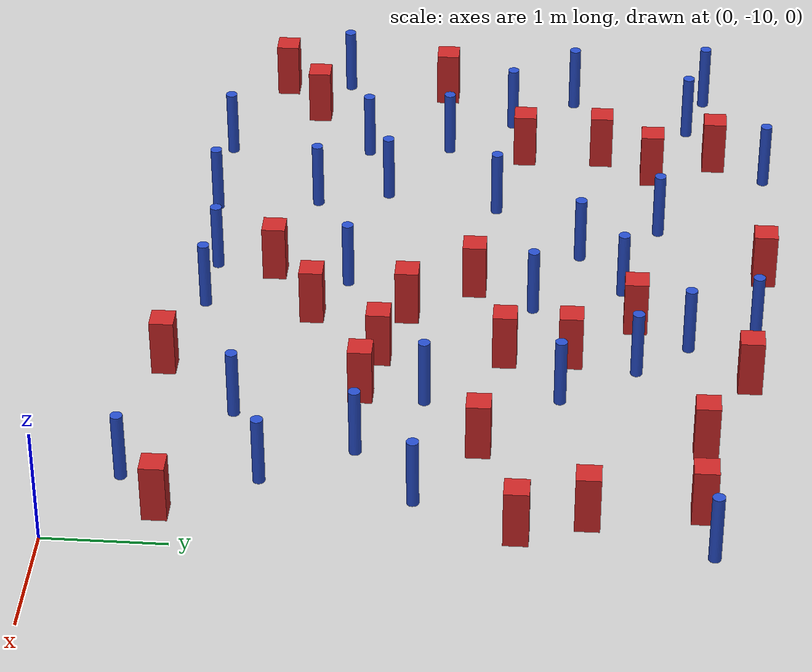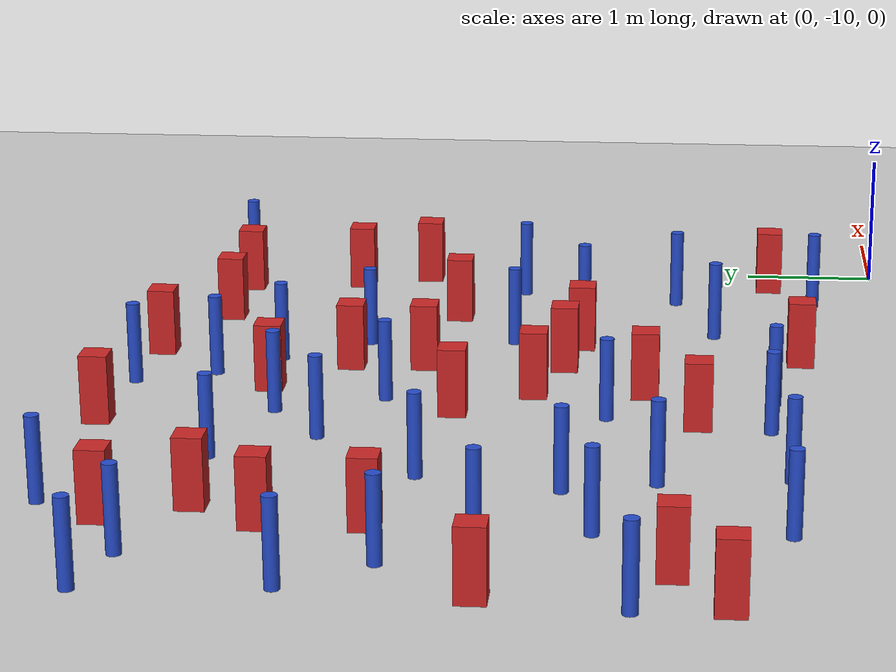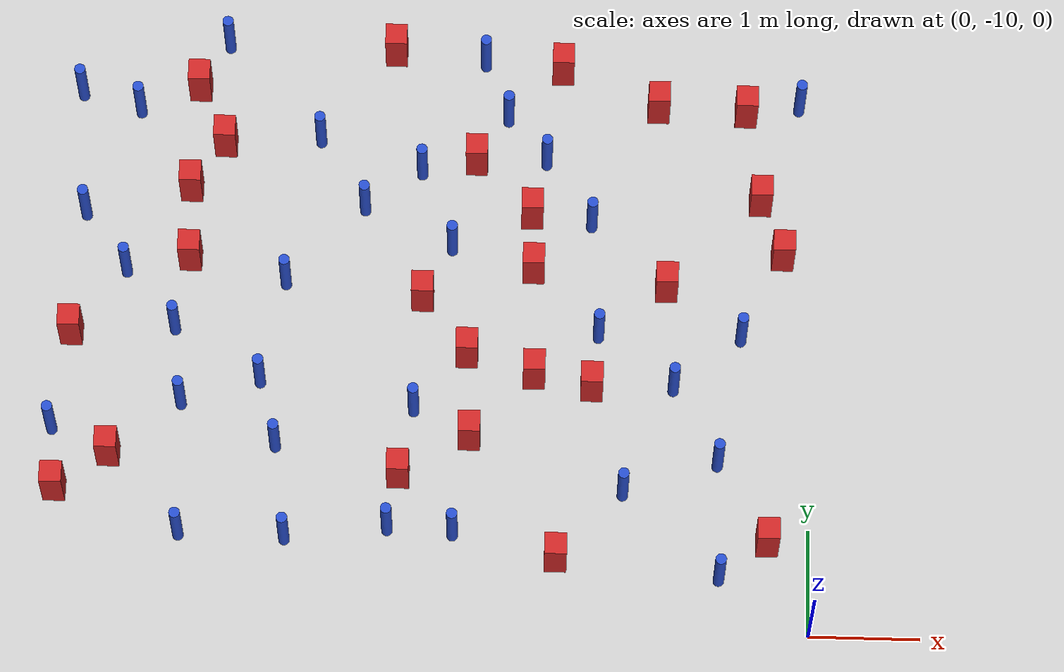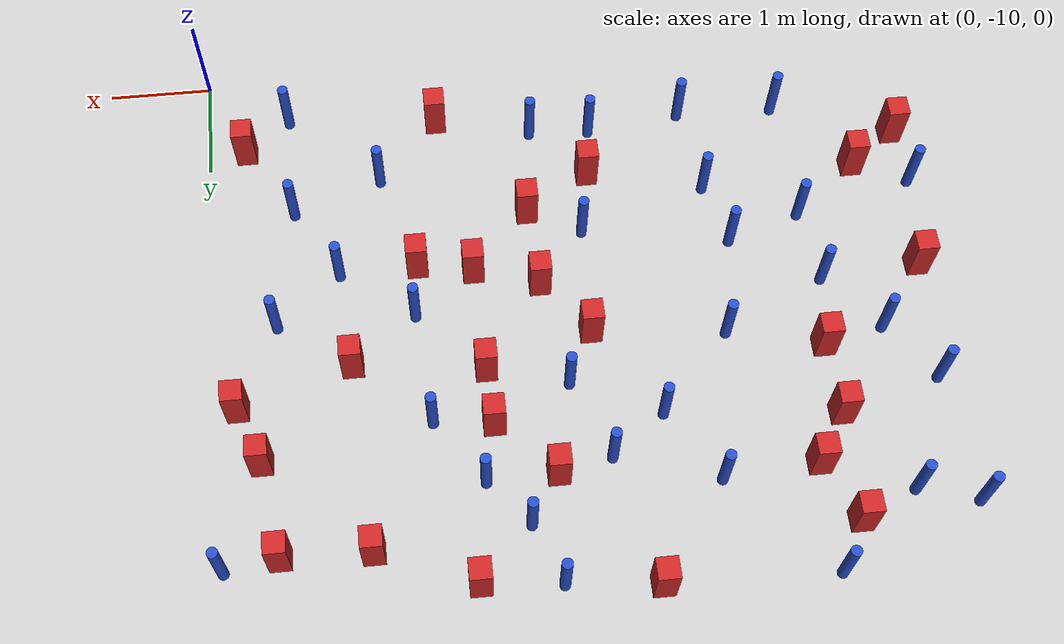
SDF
<sdf version="1.6">
 <world name="default">
  <model name="ground_plane">
   <static>1</static>
   <link name="link">
    <collision name="collision">
     <geometry><plane><normal>0 0 1</normal><size>100 100</size></plane></geometry>
     <surface><friction><ode><mu>100</mu><mu2>50</mu2></ode></friction></surface>
    </collision>
    <visual name="visual">
     <cast_shadows>0</cast_shadows>
     <geometry><plane><normal>0 0 1</normal><size>100 100</size></plane></geometry>
     <material>
      <ambient>1.0 1.0 1.0 1.0</ambient>
      <diffuse>0.8 0.8 0.8 1.0</diffuse>
      <specular>0.01 0.01 0.01 1.000000</specular>
     </material>
    </visual>
   </link>
  </model>
  <model name="square_post_obstacle6">
   <static>true</static>
   <pose>-1.40444385143 -4.89903000898 1.91545236811e-07 -7.35059704564e-06 1.12565212e-07 2.39332434364e-05</pose>
   <link name="link">
    <pose>0 0 0.25 0 -0 0</pose>
    <inertial>
     <mass>100</mass>
     <inertia>
      <ixx>0.166667</ixx>
      <ixy>0</ixy>
      <ixz>0</ixz>
      <iyy>0.166667</iyy>
      <iyz>0</iyz>
      <izz>0.166667</izz>
     </inertia>
    </inertial>
    <collision name="collision"><geometry><box><size>.2 .2 .5</size></box></geometry></collision>
    <visual name="visual">
     <geometry><box><size>.2 .2 .5</size></box></geometry>
     <material>
      <script><name>Gazebo/Red</name><uri>file://media/materials/scripts/gazebo.material</uri></script>
     </material>
    </visual>
   </link>
  </model>
  <model name="square_post_obstacle17">
   <static>true</static>
   <pose>-3.07128477709 -8.20239735445 1.91545236811e-07 -7.35059704564e-06 1.12565212e-07 2.39332434364e-05</pose>
   <link name="link">
    <pose>0 0 0.25 0 -0 0</pose>
    <inertial>
     <mass>100</mass>
     <inertia>
      <ixx>0.166667</ixx>
      <ixy>0</ixy>
      <ixz>0</ixz>
      <iyy>0.166667</iyy>
      <iyz>0</iyz>
      <izz>0.166667</izz>
     </inertia>
    </inertial>
    <collision name="collision"><geometry><box><size>.2 .2 .5</size></box></geometry></collision>
    <visual name="visual">
     <geometry><box><size>.2 .2 .5</size></box></geometry>
     <material>
      <script><name>Gazebo/Red</name><uri>file://media/materials/scripts/gazebo.material</uri></script>
     </material>
    </visual>
   </link>
  </model>
  <model name="pole_obstacle12">
   <static>true</static>
   <pose>-4.79339027958 -6.72328484426 7.38925637345e-09 -8.47170692796e-08 1.24976764786e-08 -1.74513093032e-07</pose>
   <link name="link">
    <pose>0 0 0.3 0 -0 0</pose>
    <inertial>
     <mass>1</mass>
     <inertia><ixx>0.145833</ixx><ixy>0</ixy><ixz>0</ixz><iyy>0.145833</iyy><iyz>0</iyz><izz>0.125</izz></inertia>
    </inertial>
    <collision name="collision">
     <geometry><cylinder><radius>0.05</radius><length>.6</length></cylinder></geometry>
    </collision>
    <visual name="visual">
     <geometry><cylinder><radius>0.05</radius><length>.6</length></cylinder></geometry>
     <material>
      <script><name>Gazebo/Blue</name><uri>file://media/materials/scripts/gazebo.material</uri></script>
     </material>
    </visual>
   </link>
  </model>
  <model name="pole_obstacle14">
   <static>true</static>
   <pose>-6.66168692127 -6.08012107927 7.38925637345e-09 -8.47170692796e-08 1.24976764786e-08 -1.74513093032e-07</pose>
   <link name="link">
    <pose>0 0 0.3 0 -0 0</pose>
    <inertial>
     <mass>1</mass>
     <inertia><ixx>0.145833</ixx><ixy>0</ixy><ixz>0</ixz><iyy>0.145833</iyy><iyz>0</iyz><izz>0.125</izz></inertia>
    </inertial>
    <collision name="collision">
     <geometry><cylinder><radius>0.05</radius><length>.6</length></cylinder></geometry>
    </collision>
    <visual name="visual">
     <geometry><cylinder><radius>0.05</radius><length>.6</length></cylinder></geometry>
     <material>
      <script><name>Gazebo/Blue</name><uri>file://media/materials/scripts/gazebo.material</uri></script>
     </material>
    </visual>
   </link>
  </model>
  <model name="pole_obstacle17">
   <static>true</static>
   <pose>-4.82409779071 -8.32265052835 7.38925637345e-09 -8.471706928e-08 1.24976765081e-08 -1.74513093015e-07</pose>
   <link name="link">
    <pose>0 0 0.3 0 -0 0</pose>
    <inertial>
     <mass>1</mass>
     <inertia><ixx>0.145833</ixx><ixy>0</ixy><ixz>0</ixz><iyy>0.145833</iyy><iyz>0</iyz><izz>0.125</izz></inertia>
    </inertial>
    <collision name="collision">
     <geometry><cylinder><radius>0.05</radius><length>.6</length></cylinder></geometry>
    </collision>
    <visual name="visual">
     <geometry><cylinder><radius>0.05</radius><length>.6</length></cylinder></geometry>
     <material>
      <script><name>Gazebo/Blue</name><uri>file://media/materials/scripts/gazebo.material</uri></script>
     </material>
    </visual>
   </link>
  </model>
  <model name="pole_obstacle18">
   <static>true</static>
   <pose>-6.25883870316 -6.64082050652 7.38925637345e-09 -8.47170692796e-08 1.24976764786e-08 -1.74513093032e-07</pose>
   <link name="link">
    <pose>0 0 0.3 0 -0 0</pose>
    <inertial>
     <mass>1</mass>
     <inertia><ixx>0.145833</ixx><ixy>0</ixy><ixz>0</ixz><iyy>0.145833</iyy><iyz>0</iyz><izz>0.125</izz></inertia>
    </inertial>
    <collision name="collision">
     <geometry><cylinder><radius>0.05</radius><length>.6</length></cylinder></geometry>
    </collision>
    <visual name="visual">
     <geometry><cylinder><radius>0.05</radius><length>.6</length></cylinder></geometry>
     <material>
      <script><name>Gazebo/Blue</name><uri>file://media/materials/scripts/gazebo.material</uri></script>
     </material>
    </visual>
   </link>
  </model>
  <model name="pole_obstacle27">
   <static>true</static>
   <pose>-5.78674635535 -7.20121944251 7.38925637345e-09 -8.47170692796e-08 1.24976764786e-08 -1.74513093032e-07</pose>
   <link name="link">
    <pose>0 0 0.3 0 -0 0</pose>
    <inertial>
     <mass>1</mass>
     <inertia><ixx>0.145833</ixx><ixy>0</ixy><ixz>0</ixz><iyy>0.145833</iyy><iyz>0</iyz><izz>0.125</izz></inertia>
    </inertial>
    <collision name="collision">
     <geometry><cylinder><radius>0.05</radius><length>.6</length></cylinder></geometry>
    </collision>
    <visual name="visual">
     <geometry><cylinder><radius>0.05</radius><length>.6</length></cylinder></geometry>
     <material>
      <script><name>Gazebo/Blue</name><uri>file://media/materials/scripts/gazebo.material</uri></script>
     </material>
    </visual>
   </link>
  </model>
  <model name="square_post_obstacle33">
   <static>true</static>
   <pose>-3.07728039993 -5.47345943943 1.91545236811e-07 -7.35059704564e-06 1.12565212e-07 2.39332434364e-05</pose>
   <link name="link">
    <pose>0 0 0.25 0 -0 0</pose>
    <inertial>
     <mass>100</mass>
     <inertia>
      <ixx>0.166667</ixx>
      <ixy>0</ixy>
      <ixz>0</ixz>
      <iyy>0.166667</iyy>
      <iyz>0</iyz>
      <izz>0.166667</izz>
     </inertia>
    </inertial>
    <collision name="collision"><geometry><box><size>.2 .2 .5</size></box></geometry></collision>
    <visual name="visual">
     <geometry><box><size>.2 .2 .5</size></box></geometry>
     <material>
      <script><name>Gazebo/Red</name><uri>file://media/materials/scripts/gazebo.material</uri></script>
     </material>
    </visual>
   </link>
  </model>
  <model name="pole_obstacle31">
   <static>true</static>
   <pose>-2.00265565012 -6.07647764942 7.38925637345e-09 -8.471706928e-08 1.24976765103e-08 -1.74513093015e-07</pose>
   <link name="link">
    <pose>0 0 0.3 0 -0 0</pose>
    <inertial>
     <mass>1</mass>
     <inertia><ixx>0.145833</ixx><ixy>0</ixy><ixz>0</ixz><iyy>0.145833</iyy><iyz>0</iyz><izz>0.125</izz></inertia>
    </inertial>
    <collision name="collision">
     <geometry><cylinder><radius>0.05</radius><length>.6</length></cylinder></geometry>
    </collision>
    <visual name="visual">
     <geometry><cylinder><radius>0.05</radius><length>.6</length></cylinder></geometry>
     <material>
      <script><name>Gazebo/Blue</name><uri>file://media/materials/scripts/gazebo.material</uri></script>
     </material>
    </visual>
   </link>
  </model>
  <model name="pole_obstacle41">
   <static>true</static>
   <pose>-3.01875447144 -4.46488249678 7.38925637345e-09 -8.47170692794e-08 1.24976764468e-08 -1.7451309304e-07</pose>
   <link name="link">
    <pose>0 0 0.3 0 -0 0</pose>
    <inertial>
     <mass>1</mass>
     <inertia><ixx>0.145833</ixx><ixy>0</ixy><ixz>0</ixz><iyy>0.145833</iyy><iyz>0</iyz><izz>0.125</izz></inertia>
    </inertial>
    <collision name="collision">
     <geometry><cylinder><radius>0.05</radius><length>.6</length></cylinder></geometry>
    </collision>
    <visual name="visual">
     <geometry><cylinder><radius>0.05</radius><length>.6</length></cylinder></geometry>
     <material>
      <script><name>Gazebo/Blue</name><uri>file://media/materials/scripts/gazebo.material</uri></script>
     </material>
    </visual>
   </link>
  </model>
  <model name="square_post_obstacle50">
   <static>true</static>
   <pose>-6.72833553622 -7.27044012686 1.91545236811e-07 -7.35059704564e-06 1.12565212e-07 2.39332434364e-05</pose>
   <link name="link">
    <pose>0 0 0.25 0 -0 0</pose>
    <inertial>
     <mass>100</mass>
     <inertia>
      <ixx>0.166667</ixx>
      <ixy>0</ixy>
      <ixz>0</ixz>
      <iyy>0.166667</iyy>
      <iyz>0</iyz>
      <izz>0.166667</izz>
     </inertia>
    </inertial>
    <collision name="collision"><geometry><box><size>.2 .2 .5</size></box></geometry></collision>
    <visual name="visual">
     <geometry><box><size>.2 .2 .5</size></box></geometry>
     <material>
      <script><name>Gazebo/Red</name><uri>file://media/materials/scripts/gazebo.material</uri></script>
     </material>
    </visual>
   </link>
  </model>
  <model name="square_post_obstacle51">
   <static>true</static>
   <pose>-3.85667295764 -4.37827110844 1.91545236811e-07 -7.35059704564e-06 1.12565212e-07 2.39332434364e-05</pose>
   <link name="link">
    <pose>0 0 0.25 0 -0 0</pose>
    <inertial>
     <mass>100</mass>
     <inertia>
      <ixx>0.166667</ixx>
      <ixy>0</ixy>
      <ixz>0</ixz>
      <iyy>0.166667</iyy>
      <iyz>0</iyz>
      <izz>0.166667</izz>
     </inertia>
    </inertial>
    <collision name="collision"><geometry><box><size>.2 .2 .5</size></box></geometry></collision>
    <visual name="visual">
     <geometry><box><size>.2 .2 .5</size></box></geometry>
     <material>
      <script><name>Gazebo/Red</name><uri>file://media/materials/scripts/gazebo.material</uri></script>
     </material>
    </visual>
   </link>
  </model>
  <model name="square_post_obstacle55">
   <static>true</static>
   <pose>-0.593554517572 -4.92219486548 1.91545236811e-07 -7.35059704564e-06 1.12565212e-07 2.39332434364e-05</pose>
   <link name="link">
    <pose>0 0 0.25 0 -0 0</pose>
    <inertial>
     <mass>100</mass>
     <inertia>
      <ixx>0.166667</ixx>
      <ixy>0</ixy>
      <ixz>0</ixz>
      <iyy>0.166667</iyy>
      <iyz>0</iyz>
      <izz>0.166667</izz>
     </inertia>
    </inertial>
    <collision name="collision"><geometry><box><size>.2 .2 .5</size></box></geometry></collision>
    <visual name="visual">
     <geometry><box><size>.2 .2 .5</size></box></geometry>
     <material>
      <script><name>Gazebo/Red</name><uri>file://media/materials/scripts/gazebo.material</uri></script>
     </material>
    </visual>
   </link>
  </model>
  <model name="square_post_obstacle70">
   <static>true</static>
   <pose>-1.97402746543 -7.69793560643 1.91545236811e-07 -7.35059704564e-06 1.12565212e-07 2.39332434364e-05</pose>
   <link name="link">
    <pose>0 0 0.25 0 -0 0</pose>
    <inertial>
     <mass>100</mass>
     <inertia>
      <ixx>0.166667</ixx>
      <ixy>0</ixy>
      <ixz>0</ixz>
      <iyy>0.166667</iyy>
      <iyz>0</iyz>
      <izz>0.166667</izz>
     </inertia>
    </inertial>
    <collision name="collision"><geometry><box><size>.2 .2 .5</size></box></geometry></collision>
    <visual name="visual">
     <geometry><box><size>.2 .2 .5</size></box></geometry>
     <material>
      <script><name>Gazebo/Red</name><uri>file://media/materials/scripts/gazebo.material</uri></script>
     </material>
    </visual>
   </link>
  </model>
  <model name="pole_obstacle68">
   <static>true</static>
   <pose>-3.27811197953 -6.34348157316 7.38925637345e-09 -8.47170692794e-08 1.24976764468e-08 -1.7451309304e-07</pose>
   <link name="link">
    <pose>0 0 0.3 0 -0 0</pose>
    <inertial>
     <mass>1</mass>
     <inertia><ixx>0.145833</ixx><ixy>0</ixy><ixz>0</ixz><iyy>0.145833</iyy><iyz>0</iyz><izz>0.125</izz></inertia>
    </inertial>
    <collision name="collision">
     <geometry><cylinder><radius>0.05</radius><length>.6</length></cylinder></geometry>
    </collision>
    <visual name="visual">
     <geometry><cylinder><radius>0.05</radius><length>.6</length></cylinder></geometry>
     <material>
      <script><name>Gazebo/Blue</name><uri>file://media/materials/scripts/gazebo.material</uri></script>
     </material>
    </visual>
   </link>
  </model>
  <model name="pole_obstacle82">
   <static>true</static>
   <pose>-5.41580588375 -4.33905068635 7.38925637345e-09 -8.47170692796e-08 1.24976764786e-08 -1.74513093032e-07</pose>
   <link name="link">
    <pose>0 0 0.3 0 -0 0</pose>
    <inertial>
     <mass>1</mass>
     <inertia><ixx>0.145833</ixx><ixy>0</ixy><ixz>0</ixz><iyy>0.145833</iyy><iyz>0</iyz><izz>0.125</izz></inertia>
    </inertial>
    <collision name="collision">
     <geometry><cylinder><radius>0.05</radius><length>.6</length></cylinder></geometry>
    </collision>
    <visual name="visual">
     <geometry><cylinder><radius>0.05</radius><length>.6</length></cylinder></geometry>
     <material>
      <script><name>Gazebo/Blue</name><uri>file://media/materials/scripts/gazebo.material</uri></script>
     </material>
    </visual>
   </link>
  </model>
  <model name="pole_obstacle89">
   <static>true</static>
   <pose>-3.19739316723 -9.12902795003 7.38925637345e-09 -8.47170692793e-08 1.24976764408e-08 -1.74513093041e-07</pose>
   <link name="link">
    <pose>0 0 0.3 0 -0 0</pose>
    <inertial>
     <mass>1</mass>
     <inertia><ixx>0.145833</ixx><ixy>0</ixy><ixz>0</ixz><iyy>0.145833</iyy><iyz>0</iyz><izz>0.125</izz></inertia>
    </inertial>
    <collision name="collision">
     <geometry><cylinder><radius>0.05</radius><length>.6</length></cylinder></geometry>
    </collision>
    <visual name="visual">
     <geometry><cylinder><radius>0.05</radius><length>.6</length></cylinder></geometry>
     <material>
      <script><name>Gazebo/Blue</name><uri>file://media/materials/scripts/gazebo.material</uri></script>
     </material>
    </visual>
   </link>
  </model>
  <model name="square_post_obstacle82">
   <static>true</static>
   <pose>-3.70194847 -8.58561137741 1.91545236811e-07 -7.35059704564e-06 1.12565212e-07 2.39332434364e-05</pose>
   <link name="link">
    <pose>0 0 0.25 0 -0 0</pose>
    <inertial>
     <mass>100</mass>
     <inertia>
      <ixx>0.166667</ixx>
      <ixy>0</ixy>
      <ixz>0</ixz>
      <iyy>0.166667</iyy>
      <iyz>0</iyz>
      <izz>0.166667</izz>
     </inertia>
    </inertial>
    <collision name="collision"><geometry><box><size>.2 .2 .5</size></box></geometry></collision>
    <visual name="visual">
     <geometry><box><size>.2 .2 .5</size></box></geometry>
     <material>
      <script><name>Gazebo/Red</name><uri>file://media/materials/scripts/gazebo.material</uri></script>
     </material>
    </visual>
   </link>
  </model>
  <model name="square_post_obstacle85">
   <static>true</static>
   <pose>-0.453224384504 -5.81950154449 1.91545236811e-07 -7.35059704564e-06 1.12565212e-07 2.39332434364e-05</pose>
   <link name="link">
    <pose>0 0 0.25 0 -0 0</pose>
    <inertial>
     <mass>100</mass>
     <inertia>
      <ixx>0.166667</ixx>
      <ixy>0</ixy>
      <ixz>0</ixz>
      <iyy>0.166667</iyy>
      <iyz>0</iyz>
      <izz>0.166667</izz>
     </inertia>
    </inertial>
    <collision name="collision"><geometry><box><size>.2 .2 .5</size></box></geometry></collision>
    <visual name="visual">
     <geometry><box><size>.2 .2 .5</size></box></geometry>
     <material>
      <script><name>Gazebo/Red</name><uri>file://media/materials/scripts/gazebo.material</uri></script>
     </material>
    </visual>
   </link>
  </model>
  <model name="square_post_obstacle88">
   <static>true</static>
   <pose>-3.53510634495 -6.85322954454 1.91545236811e-07 -7.35059704564e-06 1.12565212e-07 2.39332434364e-05</pose>
   <link name="link">
    <pose>0 0 0.25 0 -0 0</pose>
    <inertial>
     <mass>100</mass>
     <inertia>
      <ixx>0.166667</ixx>
      <ixy>0</ixy>
      <ixz>0</ixz>
      <iyy>0.166667</iyy>
      <iyz>0</iyz>
      <izz>0.166667</izz>
     </inertia>
    </inertial>
    <collision name="collision"><geometry><box><size>.2 .2 .5</size></box></geometry></collision>
    <visual name="visual">
     <geometry><box><size>.2 .2 .5</size></box></geometry>
     <material>
      <script><name>Gazebo/Red</name><uri>file://media/materials/scripts/gazebo.material</uri></script>
     </material>
    </visual>
   </link>
  </model>
  <model name="pole_obstacle102">
   <static>true</static>
   <pose>-1.23158757573 -7.68034353338 7.38925637345e-09 -8.47170692799e-08 1.24976765033e-08 -1.74513093018e-07</pose>
   <link name="link">
    <pose>0 0 0.3 0 -0 0</pose>
    <inertial>
     <mass>1</mass>
     <inertia><ixx>0.145833</ixx><ixy>0</ixy><ixz>0</ixz><iyy>0.145833</iyy><iyz>0</iyz><izz>0.125</izz></inertia>
    </inertial>
    <collision name="collision">
     <geometry><cylinder><radius>0.05</radius><length>.6</length></cylinder></geometry>
    </collision>
    <visual name="visual">
     <geometry><cylinder><radius>0.05</radius><length>.6</length></cylinder></geometry>
     <material>
      <script><name>Gazebo/Blue</name><uri>file://media/materials/scripts/gazebo.material</uri></script>
     </material>
    </visual>
   </link>
  </model>
  <model name="square_post_obstacle96">
   <static>true</static>
   <pose>-2.55124273066 -6.00426062025 1.91545236811e-07 -7.35059704564e-06 1.12565212e-07 2.39332434364e-05</pose>
   <link name="link">
    <pose>0 0 0.25 0 -0 0</pose>
    <inertial>
     <mass>100</mass>
     <inertia>
      <ixx>0.166667</ixx>
      <ixy>0</ixy>
      <ixz>0</ixz>
      <iyy>0.166667</iyy>
      <iyz>0</iyz>
      <izz>0.166667</izz>
     </inertia>
    </inertial>
    <collision name="collision"><geometry><box><size>.2 .2 .5</size></box></geometry></collision>
    <visual name="visual">
     <geometry><box><size>.2 .2 .5</size></box></geometry>
     <material>
      <script><name>Gazebo/Red</name><uri>file://media/materials/scripts/gazebo.material</uri></script>
     </material>
    </visual>
   </link>
  </model>
  <model name="square_post_obstacle97">
   <static>true</static>
   <pose>-1.30881797651 -6.70363157481 1.91545236811e-07 -7.35059704564e-06 1.12565212e-07 2.39332434364e-05</pose>
   <link name="link">
    <pose>0 0 0.25 0 -0 0</pose>
    <inertial>
     <mass>100</mass>
     <inertia>
      <ixx>0.166667</ixx>
      <ixy>0</ixy>
      <ixz>0</ixz>
      <iyy>0.166667</iyy>
      <iyz>0</iyz>
      <izz>0.166667</izz>
     </inertia>
    </inertial>
    <collision name="collision"><geometry><box><size>.2 .2 .5</size></box></geometry></collision>
    <visual name="visual">
     <geometry><box><size>.2 .2 .5</size></box></geometry>
     <material>
      <script><name>Gazebo/Red</name><uri>file://media/materials/scripts/gazebo.material</uri></script>
     </material>
    </visual>
   </link>
  </model>
  <model name="pole_obstacle114">
   <static>true</static>
   <pose>-3.58279023233 -7.94264724809 7.38925637345e-09 -8.47170692798e-08 1.24976765033e-08 -1.74513093019e-07</pose>
   <link name="link">
    <pose>0 0 0.3 0 -0 0</pose>
    <inertial>
     <mass>1</mass>
     <inertia><ixx>0.145833</ixx><ixy>0</ixy><ixz>0</ixz><iyy>0.145833</iyy><iyz>0</iyz><izz>0.125</izz></inertia>
    </inertial>
    <collision name="collision">
     <geometry><cylinder><radius>0.05</radius><length>.6</length></cylinder></geometry>
    </collision>
    <visual name="visual">
     <geometry><cylinder><radius>0.05</radius><length>.6</length></cylinder></geometry>
     <material>
      <script><name>Gazebo/Blue</name><uri>file://media/materials/scripts/gazebo.material</uri></script>
     </material>
    </visual>
   </link>
  </model>
  <model name="pole_obstacle117">
   <static>true</static>
   <pose>-5.69742422665 -7.93117311807 7.38925637345e-09 -8.47170692796e-08 1.24976764786e-08 -1.74513093032e-07</pose>
   <link name="link">
    <pose>0 0 0.3 0 -0 0</pose>
    <inertial>
     <mass>1</mass>
     <inertia><ixx>0.145833</ixx><ixy>0</ixy><ixz>0</ixz><iyy>0.145833</iyy><iyz>0</iyz><izz>0.125</izz></inertia>
    </inertial>
    <collision name="collision">
     <geometry><cylinder><radius>0.05</radius><length>.6</length></cylinder></geometry>
    </collision>
    <visual name="visual">
     <geometry><cylinder><radius>0.05</radius><length>.6</length></cylinder></geometry>
     <material>
      <script><name>Gazebo/Blue</name><uri>file://media/materials/scripts/gazebo.material</uri></script>
     </material>
    </visual>
   </link>
  </model>
  <model name="pole_obstacle129">
   <static>true</static>
   <pose>-4.98765309089 -7.70136281692 7.38925637345e-09 -8.47170692796e-08 1.24976764786e-08 -1.74513093032e-07</pose>
   <link name="link">
    <pose>0 0 0.3 0 -0 0</pose>
    <inertial>
     <mass>1</mass>
     <inertia><ixx>0.145833</ixx><ixy>0</ixy><ixz>0</ixz><iyy>0.145833</iyy><iyz>0</iyz><izz>0.125</izz></inertia>
    </inertial>
    <collision name="collision">
     <geometry><cylinder><radius>0.05</radius><length>.6</length></cylinder></geometry>
    </collision>
    <visual name="visual">
     <geometry><cylinder><radius>0.05</radius><length>.6</length></cylinder></geometry>
     <material>
      <script><name>Gazebo/Blue</name><uri>file://media/materials/scripts/gazebo.material</uri></script>
     </material>
    </visual>
   </link>
  </model>
  <model name="square_post_obstacle114">
   <static>true</static>
   <pose>-0.246106954346 -6.36054094245 1.91545236811e-07 -7.35059704564e-06 1.12565212e-07 2.39332434364e-05</pose>
   <link name="link">
    <pose>0 0 0.25 0 -0 0</pose>
    <inertial>
     <mass>100</mass>
     <inertia>
      <ixx>0.166667</ixx>
      <ixy>0</ixy>
      <ixz>0</ixz>
      <iyy>0.166667</iyy>
      <iyz>0</iyz>
      <izz>0.166667</izz>
     </inertia>
    </inertial>
    <collision name="collision"><geometry><box><size>.2 .2 .5</size></box></geometry></collision>
    <visual name="visual">
     <geometry><box><size>.2 .2 .5</size></box></geometry>
     <material>
      <script><name>Gazebo/Red</name><uri>file://media/materials/scripts/gazebo.material</uri></script>
     </material>
    </visual>
   </link>
  </model>
  <model name="pole_obstacle135">
   <static>true</static>
   <pose>-4.0937844254 -5.96496953587 7.38925637345e-09 -8.47170692796e-08 1.24976764786e-08 -1.74513093032e-07</pose>
   <link name="link">
    <pose>0 0 0.3 0 -0 0</pose>
    <inertial>
     <mass>1</mass>
     <inertia><ixx>0.145833</ixx><ixy>0</ixy><ixz>0</ixz><iyy>0.145833</iyy><iyz>0</iyz><izz>0.125</izz></inertia>
    </inertial>
    <collision name="collision">
     <geometry><cylinder><radius>0.05</radius><length>.6</length></cylinder></geometry>
    </collision>
    <visual name="visual">
     <geometry><cylinder><radius>0.05</radius><length>.6</length></cylinder></geometry>
     <material>
      <script><name>Gazebo/Blue</name><uri>file://media/materials/scripts/gazebo.material</uri></script>
     </material>
    </visual>
   </link>
  </model>
  <model name="square_post_obstacle121">
   <static>true</static>
   <pose>-2.52819036793 -6.54994607869 1.91545236811e-07 -7.35059704564e-06 1.12565212e-07 2.39332434364e-05</pose>
   <link name="link">
    <pose>0 0 0.25 0 -0 0</pose>
    <inertial>
     <mass>100</mass>
     <inertia>
      <ixx>0.166667</ixx>
      <ixy>0</ixy>
      <ixz>0</ixz>
      <iyy>0.166667</iyy>
      <iyz>0</iyz>
      <izz>0.166667</izz>
     </inertia>
    </inertial>
    <collision name="collision"><geometry><box><size>.2 .2 .5</size></box></geometry></collision>
    <visual name="visual">
     <geometry><box><size>.2 .2 .5</size></box></geometry>
     <material>
      <script><name>Gazebo/Red</name><uri>file://media/materials/scripts/gazebo.material</uri></script>
     </material>
    </visual>
   </link>
  </model>
  <model name="square_post_obstacle123">
   <static>true</static>
   <pose>-2.29869856042 -4.53099055926 1.91545236811e-07 -7.35059704564e-06 1.12565212e-07 2.39332434364e-05</pose>
   <link name="link">
    <pose>0 0 0.25 0 -0 0</pose>
    <inertial>
     <mass>100</mass>
     <inertia>
      <ixx>0.166667</ixx>
      <ixy>0</ixy>
      <ixz>0</ixz>
      <iyy>0.166667</iyy>
      <iyz>0</iyz>
      <izz>0.166667</izz>
     </inertia>
    </inertial>
    <collision name="collision"><geometry><box><size>.2 .2 .5</size></box></geometry></collision>
    <visual name="visual">
     <geometry><box><size>.2 .2 .5</size></box></geometry>
     <material>
      <script><name>Gazebo/Red</name><uri>file://media/materials/scripts/gazebo.material</uri></script>
     </material>
    </visual>
   </link>
  </model>
  <model name="square_post_obstacle135">
   <static>true</static>
   <pose>-5.667500204 -4.78831926004 1.91545236811e-07 -7.35059704564e-06 1.12565212e-07 2.39332434364e-05</pose>
   <link name="link">
    <pose>0 0 0.25 0 -0 0</pose>
    <inertial>
     <mass>100</mass>
     <inertia>
      <ixx>0.166667</ixx>
      <ixy>0</ixy>
      <ixz>0</ixz>
      <iyy>0.166667</iyy>
      <iyz>0</iyz>
      <izz>0.166667</izz>
     </inertia>
    </inertial>
    <collision name="collision"><geometry><box><size>.2 .2 .5</size></box></geometry></collision>
    <visual name="visual">
     <geometry><box><size>.2 .2 .5</size></box></geometry>
     <material>
      <script><name>Gazebo/Red</name><uri>file://media/materials/scripts/gazebo.material</uri></script>
     </material>
    </visual>
   </link>
  </model>
  <model name="pole_obstacle145">
   <static>true</static>
   <pose>-3.78516833423 -9.09547938027 7.38925637345e-09 -8.47170692793e-08 1.24976764408e-08 -1.74513093041e-07</pose>
   <link name="link">
    <pose>0 0 0.3 0 -0 0</pose>
    <inertial>
     <mass>1</mass>
     <inertia><ixx>0.145833</ixx><ixy>0</ixy><ixz>0</ixz><iyy>0.145833</iyy><iyz>0</iyz><izz>0.125</izz></inertia>
    </inertial>
    <collision name="collision">
     <geometry><cylinder><radius>0.05</radius><length>.6</length></cylinder></geometry>
    </collision>
    <visual name="visual">
     <geometry><cylinder><radius>0.05</radius><length>.6</length></cylinder></geometry>
     <material>
      <script><name>Gazebo/Blue</name><uri>file://media/materials/scripts/gazebo.material</uri></script>
     </material>
    </visual>
   </link>
  </model>
  <model name="pole_obstacle146">
   <static>true</static>
   <pose>-0.822686962245 -8.40250767151 7.38925637345e-09 -8.47170692797e-08 1.249767648e-08 -1.74513093032e-07</pose>
   <link name="link">
    <pose>0 0 0.3 0 -0 0</pose>
    <inertial>
     <mass>1</mass>
     <inertia><ixx>0.145833</ixx><ixy>0</ixy><ixz>0</ixz><iyy>0.145833</iyy><iyz>0</iyz><izz>0.125</izz></inertia>
    </inertial>
    <collision name="collision">
     <geometry><cylinder><radius>0.05</radius><length>.6</length></cylinder></geometry>
    </collision>
    <visual name="visual">
     <geometry><cylinder><radius>0.05</radius><length>.6</length></cylinder></geometry>
     <material>
      <script><name>Gazebo/Blue</name><uri>file://media/materials/scripts/gazebo.material</uri></script>
     </material>
    </visual>
   </link>
  </model>
  <model name="pole_obstacle154">
   <static>true</static>
   <pose>-5.66120302017 -9.1892803061 7.38925637345e-09 -8.471706928e-08 1.24976765081e-08 -1.74513093015e-07</pose>
   <link name="link">
    <pose>0 0 0.3 0 -0 0</pose>
    <inertial>
     <mass>1</mass>
     <inertia><ixx>0.145833</ixx><ixy>0</ixy><ixz>0</ixz><iyy>0.145833</iyy><iyz>0</iyz><izz>0.125</izz></inertia>
    </inertial>
    <collision name="collision">
     <geometry><cylinder><radius>0.05</radius><length>.6</length></cylinder></geometry>
    </collision>
    <visual name="visual">
     <geometry><cylinder><radius>0.05</radius><length>.6</length></cylinder></geometry>
     <material>
      <script><name>Gazebo/Blue</name><uri>file://media/materials/scripts/gazebo.material</uri></script>
     </material>
    </visual>
   </link>
  </model>
  <model name="square_post_obstacle148">
   <static>true</static>
   <pose>-2.26704924476 -9.34713813767 1.91545236811e-07 -7.35059704564e-06 1.12565212e-07 2.39332434364e-05</pose>
   <link name="link">
    <pose>0 0 0.25 0 -0 0</pose>
    <inertial>
     <mass>100</mass>
     <inertia>
      <ixx>0.166667</ixx>
      <ixy>0</ixy>
      <ixz>0</ixz>
      <iyy>0.166667</iyy>
      <iyz>0</iyz>
      <izz>0.166667</izz>
     </inertia>
    </inertial>
    <collision name="collision"><geometry><box><size>.2 .2 .5</size></box></geometry></collision>
    <visual name="visual">
     <geometry><box><size>.2 .2 .5</size></box></geometry>
     <material>
      <script><name>Gazebo/Red</name><uri>file://media/materials/scripts/gazebo.material</uri></script>
     </material>
    </visual>
   </link>
  </model>
  <model name="square_post_obstacle149">
   <static>true</static>
   <pose>-5.40586612487 -5.35059537103 1.91545236811e-07 -7.35059704564e-06 1.12565212e-07 2.39332434364e-05</pose>
   <link name="link">
    <pose>0 0 0.25 0 -0 0</pose>
    <inertial>
     <mass>100</mass>
     <inertia>
      <ixx>0.166667</ixx>
      <ixy>0</ixy>
      <ixz>0</ixz>
      <iyy>0.166667</iyy>
      <iyz>0</iyz>
      <izz>0.166667</izz>
     </inertia>
    </inertial>
    <collision name="collision"><geometry><box><size>.2 .2 .5</size></box></geometry></collision>
    <visual name="visual">
     <geometry><box><size>.2 .2 .5</size></box></geometry>
     <material>
      <script><name>Gazebo/Red</name><uri>file://media/materials/scripts/gazebo.material</uri></script>
     </material>
    </visual>
   </link>
  </model>
  <model name="pole_obstacle161">
   <static>true</static>
   <pose>-2.43088853263 -5.45807792211 7.38925637345e-09 -8.47170692798e-08 1.24976765033e-08 -1.74513093019e-07</pose>
   <link name="link">
    <pose>0 0 0.3 0 -0 0</pose>
    <inertial>
     <mass>1</mass>
     <inertia><ixx>0.145833</ixx><ixy>0</ixy><ixz>0</ixz><iyy>0.145833</iyy><iyz>0</iyz><izz>0.125</izz></inertia>
    </inertial>
    <collision name="collision">
     <geometry><cylinder><radius>0.05</radius><length>.6</length></cylinder></geometry>
    </collision>
    <visual name="visual">
     <geometry><cylinder><radius>0.05</radius><length>.6</length></cylinder></geometry>
     <material>
      <script><name>Gazebo/Blue</name><uri>file://media/materials/scripts/gazebo.material</uri></script>
     </material>
    </visual>
   </link>
  </model>
  <model name="pole_obstacle172">
   <static>true</static>
   <pose>-1.92023029026 -7.17693741402 7.38925637345e-09 -8.47170692799e-08 1.24976765033e-08 -1.74513093018e-07</pose>
   <link name="link">
    <pose>0 0 0.3 0 -0 0</pose>
    <inertial>
     <mass>1</mass>
     <inertia><ixx>0.145833</ixx><ixy>0</ixy><ixz>0</ixz><iyy>0.145833</iyy><iyz>0</iyz><izz>0.125</izz></inertia>
    </inertial>
    <collision name="collision">
     <geometry><cylinder><radius>0.05</radius><length>.6</length></cylinder></geometry>
    </collision>
    <visual name="visual">
     <geometry><cylinder><radius>0.05</radius><length>.6</length></cylinder></geometry>
     <material>
      <script><name>Gazebo/Blue</name><uri>file://media/materials/scripts/gazebo.material</uri></script>
     </material>
    </visual>
   </link>
  </model>
  <model name="pole_obstacle178">
   <static>true</static>
   <pose>-0.621323815603 -7.1780882147 7.38925637345e-09 -8.471706928e-08 1.24976765086e-08 -1.74513093015e-07</pose>
   <link name="link">
    <pose>0 0 0.3 0 -0 0</pose>
    <inertial>
     <mass>1</mass>
     <inertia><ixx>0.145833</ixx><ixy>0</ixy><ixz>0</ixz><iyy>0.145833</iyy><iyz>0</iyz><izz>0.125</izz></inertia>
    </inertial>
    <collision name="collision">
     <geometry><cylinder><radius>0.05</radius><length>.6</length></cylinder></geometry>
    </collision>
    <visual name="visual">
     <geometry><cylinder><radius>0.05</radius><length>.6</length></cylinder></geometry>
     <material>
      <script><name>Gazebo/Blue</name><uri>file://media/materials/scripts/gazebo.material</uri></script>
     </material>
    </visual>
   </link>
  </model>
  <model name="square_post_obstacle171">
   <static>true</static>
   <pose>-5.69951261248 -5.81109042753 1.91545236811e-07 -7.35059704564e-06 1.12565212e-07 2.39332434364e-05</pose>
   <link name="link">
    <pose>0 0 0.25 0 -0 0</pose>
    <inertial>
     <mass>100</mass>
     <inertia>
      <ixx>0.166667</ixx>
      <ixy>0</ixy>
      <ixz>0</ixz>
      <iyy>0.166667</iyy>
      <iyz>0</iyz>
      <izz>0.166667</izz>
     </inertia>
    </inertial>
    <collision name="collision"><geometry><box><size>.2 .2 .5</size></box></geometry></collision>
    <visual name="visual">
     <geometry><box><size>.2 .2 .5</size></box></geometry>
     <material>
      <script><name>Gazebo/Red</name><uri>file://media/materials/scripts/gazebo.material</uri></script>
     </material>
    </visual>
   </link>
  </model>
  <model name="square_post_obstacle189">
   <static>true</static>
   <pose>-0.373300460305 -9.15235992368 1.91545236811e-07 -7.35059704564e-06 1.12565212e-07 2.39332434364e-05</pose>
   <link name="link">
    <pose>0 0 0.25 0 -0 0</pose>
    <inertial>
     <mass>100</mass>
     <inertia>
      <ixx>0.166667</ixx>
      <ixy>0</ixy>
      <ixz>0</ixz>
      <iyy>0.166667</iyy>
      <iyz>0</iyz>
      <izz>0.166667</izz>
     </inertia>
    </inertial>
    <collision name="collision"><geometry><box><size>.2 .2 .5</size></box></geometry></collision>
    <visual name="visual">
     <geometry><box><size>.2 .2 .5</size></box></geometry>
     <material>
      <script><name>Gazebo/Red</name><uri>file://media/materials/scripts/gazebo.material</uri></script>
     </material>
    </visual>
   </link>
  </model>
  <model name="square_post_obstacle190">
   <static>true</static>
   <pose>-5.67688992488 -6.50573300332 1.91545236811e-07 -7.35059704564e-06 1.12565212e-07 2.39332434364e-05</pose>
   <link name="link">
    <pose>0 0 0.25 0 -0 0</pose>
    <inertial>
     <mass>100</mass>
     <inertia>
      <ixx>0.166667</ixx>
      <ixy>0</ixy>
      <ixz>0</ixz>
      <iyy>0.166667</iyy>
      <iyz>0</iyz>
      <izz>0.166667</izz>
     </inertia>
    </inertial>
    <collision name="collision"><geometry><box><size>.2 .2 .5</size></box></geometry></collision>
    <visual name="visual">
     <geometry><box><size>.2 .2 .5</size></box></geometry>
     <material>
      <script><name>Gazebo/Red</name><uri>file://media/materials/scripts/gazebo.material</uri></script>
     </material>
    </visual>
   </link>
  </model>
  <model name="square_post_obstacle191">
   <static>true</static>
   <pose>-2.49890889848 -7.59192209627 1.91545236811e-07 -7.35059704564e-06 1.12565212e-07 2.39332434364e-05</pose>
   <link name="link">
    <pose>0 0 0.25 0 -0 0</pose>
    <inertial>
     <mass>100</mass>
     <inertia>
      <ixx>0.166667</ixx>
      <ixy>0</ixy>
      <ixz>0</ixz>
      <iyy>0.166667</iyy>
      <iyz>0</iyz>
      <izz>0.166667</izz>
     </inertia>
    </inertial>
    <collision name="collision"><geometry><box><size>.2 .2 .5</size></box></geometry></collision>
    <visual name="visual">
     <geometry><box><size>.2 .2 .5</size></box></geometry>
     <material>
      <script><name>Gazebo/Red</name><uri>file://media/materials/scripts/gazebo.material</uri></script>
     </material>
    </visual>
   </link>
  </model>
  <model name="square_post_obstacle192">
   <static>true</static>
   <pose>-6.7973722756 -8.78852417506 1.91545236811e-07 -7.35059704564e-06 1.12565212e-07 2.39332434364e-05</pose>
   <link name="link">
    <pose>0 0 0.25 0 -0 0</pose>
    <inertial>
     <mass>100</mass>
     <inertia>
      <ixx>0.166667</ixx>
      <ixy>0</ixy>
      <ixz>0</ixz>
      <iyy>0.166667</iyy>
      <iyz>0</iyz>
      <izz>0.166667</izz>
     </inertia>
    </inertial>
    <collision name="collision"><geometry><box><size>.2 .2 .5</size></box></geometry></collision>
    <visual name="visual">
     <geometry><box><size>.2 .2 .5</size></box></geometry>
     <material>
      <script><name>Gazebo/Red</name><uri>file://media/materials/scripts/gazebo.material</uri></script>
     </material>
    </visual>
   </link>
  </model>
  <model name="square_post_obstacle197">
   <static>true</static>
   <pose>-6.32732961918 -8.44261868459 1.91545236811e-07 -7.35059704564e-06 1.12565212e-07 2.39332434364e-05</pose>
   <link name="link">
    <pose>0 0 0.25 0 -0 0</pose>
    <inertial>
     <mass>100</mass>
     <inertia>
      <ixx>0.166667</ixx>
      <ixy>0</ixy>
      <ixz>0</ixz>
      <iyy>0.166667</iyy>
      <iyz>0</iyz>
      <izz>0.166667</izz>
     </inertia>
    </inertial>
    <collision name="collision"><geometry><box><size>.2 .2 .5</size></box></geometry></collision>
    <visual name="visual">
     <geometry><box><size>.2 .2 .5</size></box></geometry>
     <material>
      <script><name>Gazebo/Red</name><uri>file://media/materials/scripts/gazebo.material</uri></script>
     </material>
    </visual>
   </link>
  </model>
  <model name="square_post_obstacle198">
   <static>true</static>
   <pose>-3.11447486648 -7.39994266545 1.91545236811e-07 -7.35059704564e-06 1.12565212e-07 2.39332434364e-05</pose>
   <link name="link">
    <pose>0 0 0.25 0 -0 0</pose>
    <inertial>
     <mass>100</mass>
     <inertia>
      <ixx>0.166667</ixx>
      <ixy>0</ixy>
      <ixz>0</ixz>
      <iyy>0.166667</iyy>
      <iyz>0</iyz>
      <izz>0.166667</izz>
     </inertia>
    </inertial>
    <collision name="collision"><geometry><box><size>.2 .2 .5</size></box></geometry></collision>
    <visual name="visual">
     <geometry><box><size>.2 .2 .5</size></box></geometry>
     <material>
      <script><name>Gazebo/Red</name><uri>file://media/materials/scripts/gazebo.material</uri></script>
     </material>
    </visual>
   </link>
  </model>
  <model name="pole_obstacle193">
   <static>true</static>
   <pose>-4.5266141716 -5.28532650219 7.38925637345e-09 -8.47170692796e-08 1.24976764786e-08 -1.74513093032e-07</pose>
   <link name="link">
    <pose>0 0 0.3 0 -0 0</pose>
    <inertial>
     <mass>1</mass>
     <inertia><ixx>0.145833</ixx><ixy>0</ixy><ixz>0</ixz><iyy>0.145833</iyy><iyz>0</iyz><izz>0.125</izz></inertia>
    </inertial>
    <collision name="collision">
     <geometry><cylinder><radius>0.05</radius><length>.6</length></cylinder></geometry>
    </collision>
    <visual name="visual">
     <geometry><cylinder><radius>0.05</radius><length>.6</length></cylinder></geometry>
     <material>
      <script><name>Gazebo/Blue</name><uri>file://media/materials/scripts/gazebo.material</uri></script>
     </material>
    </visual>
   </link>
  </model>
  <model name="pole_obstacle197">
   <static>true</static>
   <pose>-6.21296026084 -5.02723832507 7.38925637345e-09 -8.47170692796e-08 1.24976764786e-08 -1.74513093032e-07</pose>
   <link name="link">
    <pose>0 0 0.3 0 -0 0</pose>
    <inertial>
     <mass>1</mass>
     <inertia><ixx>0.145833</ixx><ixy>0</ixy><ixz>0</ixz><iyy>0.145833</iyy><iyz>0</iyz><izz>0.125</izz></inertia>
    </inertial>
    <collision name="collision">
     <geometry><cylinder><radius>0.05</radius><length>.6</length></cylinder></geometry>
    </collision>
    <visual name="visual">
     <geometry><cylinder><radius>0.05</radius><length>.6</length></cylinder></geometry>
     <material>
      <script><name>Gazebo/Blue</name><uri>file://media/materials/scripts/gazebo.material</uri></script>
     </material>
    </visual>
   </link>
  </model>
  <model name="pole_obstacle204">
   <static>true</static>
   <pose>-0.801566192307 -9.49389001638 7.38925637345e-09 -8.47170692797e-08 1.249767648e-08 -1.74513093032e-07</pose>
   <link name="link">
    <pose>0 0 0.3 0 -0 0</pose>
    <inertial>
     <mass>1</mass>
     <inertia><ixx>0.145833</ixx><ixy>0</ixy><ixz>0</ixz><iyy>0.145833</iyy><iyz>0</iyz><izz>0.125</izz></inertia>
    </inertial>
    <collision name="collision">
     <geometry><cylinder><radius>0.05</radius><length>.6</length></cylinder></geometry>
    </collision>
    <visual name="visual">
     <geometry><cylinder><radius>0.05</radius><length>.6</length></cylinder></geometry>
     <material>
      <script><name>Gazebo/Blue</name><uri>file://media/materials/scripts/gazebo.material</uri></script>
     </material>
    </visual>
   </link>
  </model>
  <model name="pole_obstacle210">
   <static>true</static>
   <pose>-4.70613255333 -9.20962199281 7.38925637345e-09 -8.471706928e-08 1.24976765081e-08 -1.74513093015e-07</pose>
   <link name="link">
    <pose>0 0 0.3 0 -0 0</pose>
    <inertial>
     <mass>1</mass>
     <inertia><ixx>0.145833</ixx><ixy>0</ixy><ixz>0</ixz><iyy>0.145833</iyy><iyz>0</iyz><izz>0.125</izz></inertia>
    </inertial>
    <collision name="collision">
     <geometry><cylinder><radius>0.05</radius><length>.6</length></cylinder></geometry>
    </collision>
    <visual name="visual">
     <geometry><cylinder><radius>0.05</radius><length>.6</length></cylinder></geometry>
     <material>
      <script><name>Gazebo/Blue</name><uri>file://media/materials/scripts/gazebo.material</uri></script>
     </material>
    </visual>
   </link>
  </model>
  <model name="pole_obstacle215">
   <static>true</static>
   <pose>-6.85734999043 -8.20489997922 7.38925637345e-09 -8.471706928e-08 1.24976765081e-08 -1.74513093015e-07</pose>
   <link name="link">
    <pose>0 0 0.3 0 -0 0</pose>
    <inertial>
     <mass>1</mass>
     <inertia><ixx>0.145833</ixx><ixy>0</ixy><ixz>0</ixz><iyy>0.145833</iyy><iyz>0</iyz><izz>0.125</izz></inertia>
    </inertial>
    <collision name="collision">
     <geometry><cylinder><radius>0.05</radius><length>.6</length></cylinder></geometry>
    </collision>
    <visual name="visual">
     <geometry><cylinder><radius>0.05</radius><length>.6</length></cylinder></geometry>
     <material>
      <script><name>Gazebo/Blue</name><uri>file://media/materials/scripts/gazebo.material</uri></script>
     </material>
    </visual>
   </link>
  </model>
  <model name="pole_obstacle218">
   <static>true</static>
   <pose>-0.0981059904253 -4.84539997922 7.38925637345e-09 -8.47170692799e-08 1.24976765058e-08 -1.74513093018e-07</pose>
   <link name="link">
    <pose>0 0 0.3 0 -0 0</pose>
    <inertial>
     <mass>1</mass>
     <inertia><ixx>0.145833</ixx><ixy>0</ixy><ixz>0</ixz><iyy>0.145833</iyy><iyz>0</iyz><izz>0.125</izz></inertia>
    </inertial>
    <collision name="collision">
     <geometry><cylinder><radius>0.05</radius><length>.6</length></cylinder></geometry>
    </collision>
    <visual name="visual">
     <geometry><cylinder><radius>0.05</radius><length>.6</length></cylinder></geometry>
     <material>
      <script><name>Gazebo/Blue</name><uri>file://media/materials/scripts/gazebo.material</uri></script>
     </material>
    </visual>
   </link>
  </model>
  <model name="pole_obstacle224">
   <static>true</static>
   <pose>-2.79375999043 -5.02670997922 7.38925637345e-09 -8.47170692798e-08 1.24976765033e-08 -1.74513093019e-07</pose>
   <link name="link">
    <pose>0 0 0.3 0 -0 0</pose>
    <inertial>
     <mass>1</mass>
     <inertia><ixx>0.145833</ixx><ixy>0</ixy><ixz>0</ixz><iyy>0.145833</iyy><iyz>0</iyz><izz>0.125</izz></inertia>
    </inertial>
    <collision name="collision">
     <geometry><cylinder><radius>0.05</radius><length>.6</length></cylinder></geometry>
    </collision>
    <visual name="visual">
     <geometry><cylinder><radius>0.05</radius><length>.6</length></cylinder></geometry>
     <material>
      <script><name>Gazebo/Blue</name><uri>file://media/materials/scripts/gazebo.material</uri></script>
     </material>
    </visual>
   </link>
  </model>
  <model name="pole_obstacle230">
   <static>true</static>
   <pose>-6.75937999043 -4.86608997922 7.38925637345e-09 -8.47170692796e-08 1.24976764786e-08 -1.74513093032e-07</pose>
   <link name="link">
    <pose>0 0 0.3 0 -0 0</pose>
    <inertial>
     <mass>1</mass>
     <inertia><ixx>0.145833</ixx><ixy>0</ixy><ixz>0</ixz><iyy>0.145833</iyy><iyz>0</iyz><izz>0.125</izz></inertia>
    </inertial>
    <collision name="collision">
     <geometry><cylinder><radius>0.05</radius><length>.6</length></cylinder></geometry>
    </collision>
    <visual name="visual">
     <geometry><cylinder><radius>0.05</radius><length>.6</length></cylinder></geometry>
     <material>
      <script><name>Gazebo/Blue</name><uri>file://media/materials/scripts/gazebo.material</uri></script>
     </material>
    </visual>
   </link>
  </model>
  <model name="pole_obstacle232">
   <static>true</static>
   <pose>-1.67559999043 -8.70523997922 7.38925637345e-09 -8.47170692798e-08 1.24976764879e-08 -1.74513093027e-07</pose>
   <link name="link">
    <pose>0 0 0.3 0 -0 0</pose>
    <inertial>
     <mass>1</mass>
     <inertia><ixx>0.145833</ixx><ixy>0</ixy><ixz>0</ixz><iyy>0.145833</iyy><iyz>0</iyz><izz>0.125</izz></inertia>
    </inertial>
    <collision name="collision">
     <geometry><cylinder><radius>0.05</radius><length>.6</length></cylinder></geometry>
    </collision>
    <visual name="visual">
     <geometry><cylinder><radius>0.05</radius><length>.6</length></cylinder></geometry>
     <material>
      <script><name>Gazebo/Blue</name><uri>file://media/materials/scripts/gazebo.material</uri></script>
     </material>
    </visual>
   </link>
  </model>
  <model name="pole_obstacle239">
   <static>true</static>
   <pose>-3.57880999043 -5.58720997922 7.38925637345e-09 -8.47170692798e-08 1.24976765033e-08 -1.74513093019e-07</pose>
   <link name="link">
    <pose>0 0 0.3 0 -0 0</pose>
    <inertial>
     <mass>1</mass>
     <inertia><ixx>0.145833</ixx><ixy>0</ixy><ixz>0</ixz><iyy>0.145833</iyy><iyz>0</iyz><izz>0.125</izz></inertia>
    </inertial>
    <collision name="collision">
     <geometry><cylinder><radius>0.05</radius><length>.6</length></cylinder></geometry>
    </collision>
    <visual name="visual">
     <geometry><cylinder><radius>0.05</radius><length>.6</length></cylinder></geometry>
     <material>
      <script><name>Gazebo/Blue</name><uri>file://media/materials/scripts/gazebo.material</uri></script>
     </material>
    </visual>
   </link>
  </model>
 </world>
</sdf>
